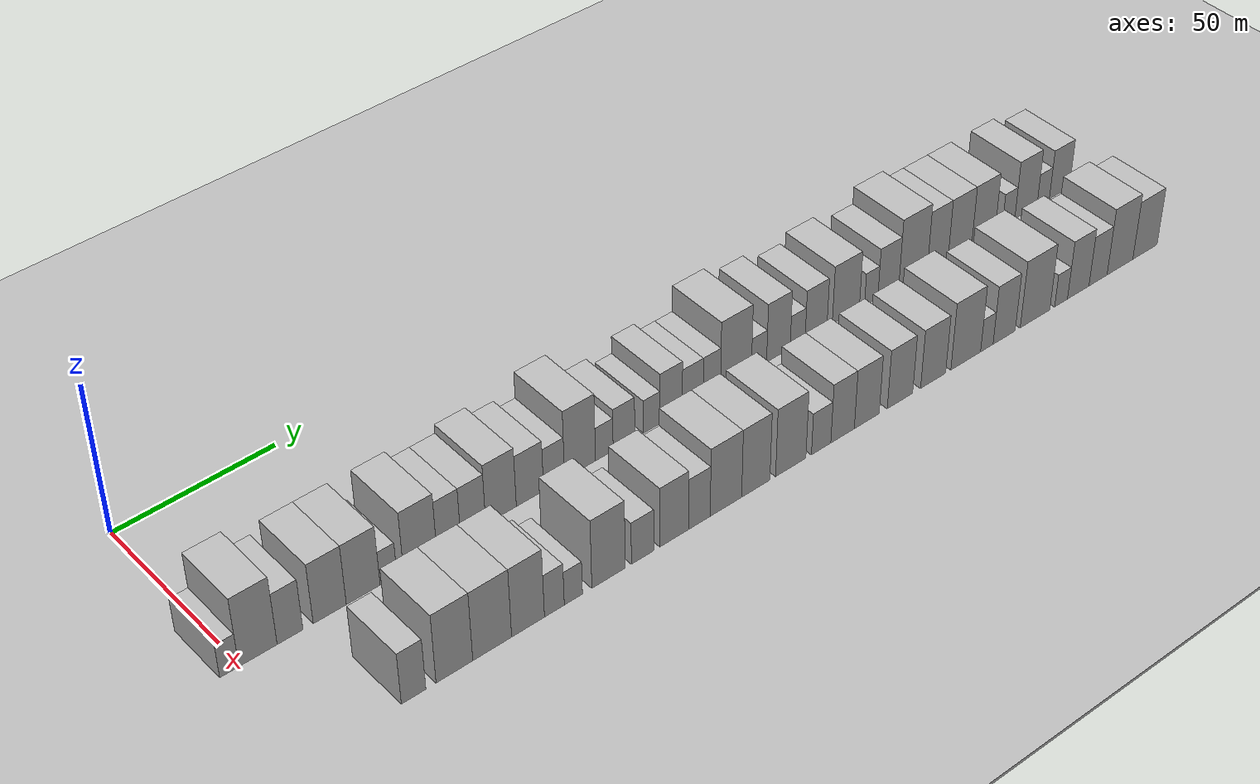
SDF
<sdf version="1.6">
 <world name="default">
  <include><name>ground_plane_1</name><uri>model://HANNAS_ground_plane</uri></include>
  <include>
   <name>ground_plane_2</name>
   <uri>model://HANNAS_ground_plane</uri>
   <pose>100 0 0  0 0 0</pose>
  </include>
  <model name="building_32">
   <static>1</static>
   <pose>50.0000 -3.4309 0 0.000000 0.000000 0.000000</pose>
   <link name="link">
    <pose>0 0 6.00 0 0 0</pose>
    <collision name="collision"><geometry><box><size>20.0000 5.4626 12.0000</size></box></geometry></collision>
    <visual name="visual">
     <cast_shadows>0</cast_shadows>
     <geometry><box><size>20.0000 5.4626 12.0000</size></box></geometry>
     <material>
      <script>
       <uri>model://HANNAS_wall/materials/scripts</uri>
       <uri>model://HANNAS_wall/materials/textures</uri>
       <name>vrc/HANNAS_wall</name>
      </script>
     </material>
    </visual>
   </link>
  </model>
  <model name="building_33">
   <static>1</static>
   <pose>50.0000 4.8221 0 0.000000 0.000000 0.000000</pose>
   <link name="link">
    <pose>0 0 12.00 0 0 0</pose>
    <collision name="collision"><geometry><box><size>20.0000 11.0434 24.0000</size></box></geometry></collision>
    <visual name="visual">
     <cast_shadows>0</cast_shadows>
     <geometry><box><size>20.0000 11.0434 24.0000</size></box></geometry>
     <material>
      <script>
       <uri>model://HANNAS_wall/materials/scripts</uri>
       <uri>model://HANNAS_wall/materials/textures</uri>
       <name>vrc/HANNAS_wall</name>
      </script>
     </material>
    </visual>
   </link>
  </model>
  <model name="building_34">
   <static>1</static>
   <pose>50.0000 14.1204 0 0.000000 0.000000 0.000000</pose>
   <link name="link">
    <pose>0 0 9.00 0 0 0</pose>
    <collision name="collision"><geometry><box><size>20.0000 7.5531 18.0000</size></box></geometry></collision>
    <visual name="visual">
     <cast_shadows>0</cast_shadows>
     <geometry><box><size>20.0000 7.5531 18.0000</size></box></geometry>
     <material>
      <script>
       <uri>model://HANNAS_wall/materials/scripts</uri>
       <uri>model://HANNAS_wall/materials/textures</uri>
       <name>vrc/HANNAS_wall</name>
      </script>
     </material>
    </visual>
   </link>
  </model>
  <model name="building_35">
   <static>1</static>
   <pose>50.0000 25.8246 0 0.000000 0.000000 0.000000</pose>
   <link name="link">
    <pose>0 0 10.50 0 0 0</pose>
    <collision name="collision"><geometry><box><size>20.0000 9.8552 21.0000</size></box></geometry></collision>
    <visual name="visual">
     <cast_shadows>0</cast_shadows>
     <geometry><box><size>20.0000 9.8552 21.0000</size></box></geometry>
     <material>
      <script>
       <uri>model://HANNAS_wall/materials/scripts</uri>
       <uri>model://HANNAS_wall/materials/textures</uri>
       <name>vrc/HANNAS_wall</name>
      </script>
     </material>
    </visual>
   </link>
  </model>
  <model name="building_36">
   <static>1</static>
   <pose>50.0000 35.8675 0 0.000000 0.000000 0.000000</pose>
   <link name="link">
    <pose>0 0 10.50 0 0 0</pose>
    <collision name="collision"><geometry><box><size>20.0000 10.2308 21.0000</size></box></geometry></collision>
    <visual name="visual">
     <cast_shadows>0</cast_shadows>
     <geometry><box><size>20.0000 10.2308 21.0000</size></box></geometry>
     <material>
      <script>
       <uri>model://HANNAS_wall/materials/scripts</uri>
       <uri>model://HANNAS_wall/materials/textures</uri>
       <name>vrc/HANNAS_wall</name>
      </script>
     </material>
    </visual>
   </link>
  </model>
  <model name="building_37">
   <static>1</static>
   <pose>50.0000 43.5499 0 0.000000 0.000000 0.000000</pose>
   <link name="link">
    <pose>0 0 6.00 0 0 0</pose>
    <collision name="collision"><geometry><box><size>20.0000 5.1339 12.0000</size></box></geometry></collision>
    <visual name="visual">
     <cast_shadows>0</cast_shadows>
     <geometry><box><size>20.0000 5.1339 12.0000</size></box></geometry>
     <material>
      <script>
       <uri>model://HANNAS_wall/materials/scripts</uri>
       <uri>model://HANNAS_wall/materials/textures</uri>
       <name>vrc/HANNAS_wall</name>
      </script>
     </material>
    </visual>
   </link>
  </model>
  <model name="building_38">
   <static>1</static>
   <pose>50.0000 53.2975 0 0.000000 0.000000 0.000000</pose>
   <link name="link">
    <pose>0 0 10.50 0 0 0</pose>
    <collision name="collision"><geometry><box><size>20.0000 10.3613 21.0000</size></box></geometry></collision>
    <visual name="visual">
     <cast_shadows>0</cast_shadows>
     <geometry><box><size>20.0000 10.3613 21.0000</size></box></geometry>
     <material>
      <script>
       <uri>model://HANNAS_wall/materials/scripts</uri>
       <uri>model://HANNAS_wall/materials/textures</uri>
       <name>vrc/HANNAS_wall</name>
      </script>
     </material>
    </visual>
   </link>
  </model>
  <model name="building_39">
   <static>1</static>
   <pose>50.0000 62.2341 0 0.000000 0.000000 0.000000</pose>
   <link name="link">
    <pose>0 0 9.00 0 0 0</pose>
    <collision name="collision"><geometry><box><size>20.0000 7.5119 18.0000</size></box></geometry></collision>
    <visual name="visual">
     <cast_shadows>0</cast_shadows>
     <geometry><box><size>20.0000 7.5119 18.0000</size></box></geometry>
     <material>
      <script>
       <uri>model://HANNAS_wall/materials/scripts</uri>
       <uri>model://HANNAS_wall/materials/textures</uri>
       <name>vrc/HANNAS_wall</name>
      </script>
     </material>
    </visual>
   </link>
  </model>
  <model name="building_40">
   <static>1</static>
   <pose>50.0000 69.9717 0 0.000000 0.000000 0.000000</pose>
   <link name="link">
    <pose>0 0 9.00 0 0 0</pose>
    <collision name="collision"><geometry><box><size>20.0000 7.9632 18.0000</size></box></geometry></collision>
    <visual name="visual">
     <cast_shadows>0</cast_shadows>
     <geometry><box><size>20.0000 7.9632 18.0000</size></box></geometry>
     <material>
      <script>
       <uri>model://HANNAS_wall/materials/scripts</uri>
       <uri>model://HANNAS_wall/materials/textures</uri>
       <name>vrc/HANNAS_wall</name>
      </script>
     </material>
    </visual>
   </link>
  </model>
  <model name="building_41">
   <static>1</static>
   <pose>50.0000 78.8873 0 0.000000 0.000000 0.000000</pose>
   <link name="link">
    <pose>0 0 10.50 0 0 0</pose>
    <collision name="collision"><geometry><box><size>20.0000 9.8679 21.0000</size></box></geometry></collision>
    <visual name="visual">
     <cast_shadows>0</cast_shadows>
     <geometry><box><size>20.0000 9.8679 21.0000</size></box></geometry>
     <material>
      <script>
       <uri>model://HANNAS_wall/materials/scripts</uri>
       <uri>model://HANNAS_wall/materials/textures</uri>
       <name>vrc/HANNAS_wall</name>
      </script>
     </material>
    </visual>
   </link>
  </model>
  <model name="building_42">
   <static>1</static>
   <pose>50.0000 88.2844 0 0.000000 0.000000 0.000000</pose>
   <link name="link">
    <pose>0 0 9.00 0 0 0</pose>
    <collision name="collision"><geometry><box><size>20.0000 8.9264 18.0000</size></box></geometry></collision>
    <visual name="visual">
     <cast_shadows>0</cast_shadows>
     <geometry><box><size>20.0000 8.9264 18.0000</size></box></geometry>
     <material>
      <script>
       <uri>model://HANNAS_wall/materials/scripts</uri>
       <uri>model://HANNAS_wall/materials/textures</uri>
       <name>vrc/HANNAS_wall</name>
      </script>
     </material>
    </visual>
   </link>
  </model>
  <model name="building_43">
   <static>1</static>
   <pose>50.0000 96.2258 0 0.000000 0.000000 0.000000</pose>
   <link name="link">
    <pose>0 0 7.50 0 0 0</pose>
    <collision name="collision"><geometry><box><size>20.0000 6.9563 15.0000</size></box></geometry></collision>
    <visual name="visual">
     <cast_shadows>0</cast_shadows>
     <geometry><box><size>20.0000 6.9563 15.0000</size></box></geometry>
     <material>
      <script>
       <uri>model://HANNAS_wall/materials/scripts</uri>
       <uri>model://HANNAS_wall/materials/textures</uri>
       <name>vrc/HANNAS_wall</name>
      </script>
     </material>
    </visual>
   </link>
  </model>
  <model name="building_44">
   <static>1</static>
   <pose>50.0000 104.8939 0 0.000000 0.000000 0.000000</pose>
   <link name="link">
    <pose>0 0 12.00 0 0 0</pose>
    <collision name="collision"><geometry><box><size>20.0000 10.3800 24.0000</size></box></geometry></collision>
    <visual name="visual">
     <cast_shadows>0</cast_shadows>
     <geometry><box><size>20.0000 10.3800 24.0000</size></box></geometry>
     <material>
      <script>
       <uri>model://HANNAS_wall/materials/scripts</uri>
       <uri>model://HANNAS_wall/materials/textures</uri>
       <name>vrc/HANNAS_wall</name>
      </script>
     </material>
    </visual>
   </link>
  </model>
  <model name="building_45">
   <static>1</static>
   <pose>50.0000 113.0699 0 0.000000 0.000000 0.000000</pose>
   <link name="link">
    <pose>0 0 6.00 0 0 0</pose>
    <collision name="collision"><geometry><box><size>20.0000 5.9718 12.0000</size></box></geometry></collision>
    <visual name="visual">
     <cast_shadows>0</cast_shadows>
     <geometry><box><size>20.0000 5.9718 12.0000</size></box></geometry>
     <material>
      <script>
       <uri>model://HANNAS_wall/materials/scripts</uri>
       <uri>model://HANNAS_wall/materials/textures</uri>
       <name>vrc/HANNAS_wall</name>
      </script>
     </material>
    </visual>
   </link>
  </model>
  <model name="building_46">
   <static>1</static>
   <pose>50.0000 119.7701 0 0.000000 0.000000 0.000000</pose>
   <link name="link">
    <pose>0 0 7.50 0 0 0</pose>
    <collision name="collision"><geometry><box><size>20.0000 7.4286 15.0000</size></box></geometry></collision>
    <visual name="visual">
     <cast_shadows>0</cast_shadows>
     <geometry><box><size>20.0000 7.4286 15.0000</size></box></geometry>
     <material>
      <script>
       <uri>model://HANNAS_wall/materials/scripts</uri>
       <uri>model://HANNAS_wall/materials/textures</uri>
       <name>vrc/HANNAS_wall</name>
      </script>
     </material>
    </visual>
   </link>
  </model>
  <model name="building_47">
   <static>1</static>
   <pose>50.0000 129.3708 0 0.000000 0.000000 0.000000</pose>
   <link name="link">
    <pose>0 0 6.00 0 0 0</pose>
    <collision name="collision"><geometry><box><size>20.0000 5.7727 12.0000</size></box></geometry></collision>
    <visual name="visual">
     <cast_shadows>0</cast_shadows>
     <geometry><box><size>20.0000 5.7727 12.0000</size></box></geometry>
     <material>
      <script>
       <uri>model://HANNAS_wall/materials/scripts</uri>
       <uri>model://HANNAS_wall/materials/textures</uri>
       <name>vrc/HANNAS_wall</name>
      </script>
     </material>
    </visual>
   </link>
  </model>
  <model name="building_48">
   <static>1</static>
   <pose>50.0000 136.1552 0 0.000000 0.000000 0.000000</pose>
   <link name="link">
    <pose>0 0 9.00 0 0 0</pose>
    <collision name="collision"><geometry><box><size>20.0000 7.7961 18.0000</size></box></geometry></collision>
    <visual name="visual">
     <cast_shadows>0</cast_shadows>
     <geometry><box><size>20.0000 7.7961 18.0000</size></box></geometry>
     <material>
      <script>
       <uri>model://HANNAS_wall/materials/scripts</uri>
       <uri>model://HANNAS_wall/materials/textures</uri>
       <name>vrc/HANNAS_wall</name>
      </script>
     </material>
    </visual>
   </link>
  </model>
  <model name="building_49">
   <static>1</static>
   <pose>50.0000 143.7373 0 0.000000 0.000000 0.000000</pose>
   <link name="link">
    <pose>0 0 7.50 0 0 0</pose>
    <collision name="collision"><geometry><box><size>20.0000 7.3680 15.0000</size></box></geometry></collision>
    <visual name="visual">
     <cast_shadows>0</cast_shadows>
     <geometry><box><size>20.0000 7.3680 15.0000</size></box></geometry>
     <material>
      <script>
       <uri>model://HANNAS_wall/materials/scripts</uri>
       <uri>model://HANNAS_wall/materials/textures</uri>
       <name>vrc/HANNAS_wall</name>
      </script>
     </material>
    </visual>
   </link>
  </model>
  <model name="building_50">
   <static>1</static>
   <pose>50.0000 150.5188 0 0.000000 0.000000 0.000000</pose>
   <link name="link">
    <pose>0 0 7.50 0 0 0</pose>
    <collision name="collision"><geometry><box><size>20.0000 6.1952 15.0000</size></box></geometry></collision>
    <visual name="visual">
     <cast_shadows>0</cast_shadows>
     <geometry><box><size>20.0000 6.1952 15.0000</size></box></geometry>
     <material>
      <script>
       <uri>model://HANNAS_wall/materials/scripts</uri>
       <uri>model://HANNAS_wall/materials/textures</uri>
       <name>vrc/HANNAS_wall</name>
      </script>
     </material>
    </visual>
   </link>
  </model>
  <model name="building_51">
   <static>1</static>
   <pose>50.0000 159.2258 0 0.000000 0.000000 0.000000</pose>
   <link name="link">
    <pose>0 0 12.00 0 0 0</pose>
    <collision name="collision"><geometry><box><size>20.0000 11.2186 24.0000</size></box></geometry></collision>
    <visual name="visual">
     <cast_shadows>0</cast_shadows>
     <geometry><box><size>20.0000 11.2186 24.0000</size></box></geometry>
     <material>
      <script>
       <uri>model://HANNAS_wall/materials/scripts</uri>
       <uri>model://HANNAS_wall/materials/textures</uri>
       <name>vrc/HANNAS_wall</name>
      </script>
     </material>
    </visual>
   </link>
  </model>
  <model name="building_52">
   <static>1</static>
   <pose>50.0000 167.6188 0 0.000000 0.000000 0.000000</pose>
   <link name="link">
    <pose>0 0 6.00 0 0 0</pose>
    <collision name="collision"><geometry><box><size>20.0000 5.5675 12.0000</size></box></geometry></collision>
    <visual name="visual">
     <cast_shadows>0</cast_shadows>
     <geometry><box><size>20.0000 5.5675 12.0000</size></box></geometry>
     <material>
      <script>
       <uri>model://HANNAS_wall/materials/scripts</uri>
       <uri>model://HANNAS_wall/materials/textures</uri>
       <name>vrc/HANNAS_wall</name>
      </script>
     </material>
    </visual>
   </link>
  </model>
  <model name="building_53">
   <static>1</static>
   <pose>50.0000 174.7713 0 0.000000 0.000000 0.000000</pose>
   <link name="link">
    <pose>0 0 10.50 0 0 0</pose>
    <collision name="collision"><geometry><box><size>20.0000 8.7375 21.0000</size></box></geometry></collision>
    <visual name="visual">
     <cast_shadows>0</cast_shadows>
     <geometry><box><size>20.0000 8.7375 21.0000</size></box></geometry>
     <material>
      <script>
       <uri>model://HANNAS_wall/materials/scripts</uri>
       <uri>model://HANNAS_wall/materials/textures</uri>
       <name>vrc/HANNAS_wall</name>
      </script>
     </material>
    </visual>
   </link>
  </model>
  <model name="building_54">
   <static>1</static>
   <pose>50.0000 181.9391 0 0.000000 0.000000 0.000000</pose>
   <link name="link">
    <pose>0 0 6.00 0 0 0</pose>
    <collision name="collision"><geometry><box><size>20.0000 5.5981 12.0000</size></box></geometry></collision>
    <visual name="visual">
     <cast_shadows>0</cast_shadows>
     <geometry><box><size>20.0000 5.5981 12.0000</size></box></geometry>
     <material>
      <script>
       <uri>model://HANNAS_wall/materials/scripts</uri>
       <uri>model://HANNAS_wall/materials/textures</uri>
       <name>vrc/HANNAS_wall</name>
      </script>
     </material>
    </visual>
   </link>
  </model>
  <model name="building_55">
   <static>1</static>
   <pose>50.0000 188.8689 0 0.000000 0.000000 0.000000</pose>
   <link name="link">
    <pose>0 0 9.00 0 0 0</pose>
    <collision name="collision"><geometry><box><size>20.0000 8.2615 18.0000</size></box></geometry></collision>
    <visual name="visual">
     <cast_shadows>0</cast_shadows>
     <geometry><box><size>20.0000 8.2615 18.0000</size></box></geometry>
     <material>
      <script>
       <uri>model://HANNAS_wall/materials/scripts</uri>
       <uri>model://HANNAS_wall/materials/textures</uri>
       <name>vrc/HANNAS_wall</name>
      </script>
     </material>
    </visual>
   </link>
  </model>
  <model name="building_56">
   <static>1</static>
   <pose>50.0000 200.1994 0 0.000000 0.000000 0.000000</pose>
   <link name="link">
    <pose>0 0 10.50 0 0 0</pose>
    <collision name="collision"><geometry><box><size>20.0000 10.3995 21.0000</size></box></geometry></collision>
    <visual name="visual">
     <cast_shadows>0</cast_shadows>
     <geometry><box><size>20.0000 10.3995 21.0000</size></box></geometry>
     <material>
      <script>
       <uri>model://HANNAS_wall/materials/scripts</uri>
       <uri>model://HANNAS_wall/materials/textures</uri>
       <name>vrc/HANNAS_wall</name>
      </script>
     </material>
    </visual>
   </link>
  </model>
  <model name="building_57">
   <static>1</static>
   <pose>50.0000 210.0038 0 0.000000 0.000000 0.000000</pose>
   <link name="link">
    <pose>0 0 6.00 0 0 0</pose>
    <collision name="collision"><geometry><box><size>20.0000 5.2093 12.0000</size></box></geometry></collision>
    <visual name="visual">
     <cast_shadows>0</cast_shadows>
     <geometry><box><size>20.0000 5.2093 12.0000</size></box></geometry>
     <material>
      <script>
       <uri>model://HANNAS_wall/materials/scripts</uri>
       <uri>model://HANNAS_wall/materials/textures</uri>
       <name>vrc/HANNAS_wall</name>
      </script>
     </material>
    </visual>
   </link>
  </model>
  <model name="building_58">
   <static>1</static>
   <pose>50.0000 216.7293 0 0.000000 0.000000 0.000000</pose>
   <link name="link">
    <pose>0 0 9.00 0 0 0</pose>
    <collision name="collision"><geometry><box><size>20.0000 8.2417 18.0000</size></box></geometry></collision>
    <visual name="visual">
     <cast_shadows>0</cast_shadows>
     <geometry><box><size>20.0000 8.2417 18.0000</size></box></geometry>
     <material>
      <script>
       <uri>model://HANNAS_wall/materials/scripts</uri>
       <uri>model://HANNAS_wall/materials/textures</uri>
       <name>vrc/HANNAS_wall</name>
      </script>
     </material>
    </visual>
   </link>
  </model>
  <model name="building_59">
   <static>1</static>
   <pose>50.0000 226.5203 0 0.000000 0.000000 0.000000</pose>
   <link name="link">
    <pose>0 0 12.00 0 0 0</pose>
    <collision name="collision"><geometry><box><size>20.0000 11.3402 24.0000</size></box></geometry></collision>
    <visual name="visual">
     <cast_shadows>0</cast_shadows>
     <geometry><box><size>20.0000 11.3402 24.0000</size></box></geometry>
     <material>
      <script>
       <uri>model://HANNAS_wall/materials/scripts</uri>
       <uri>model://HANNAS_wall/materials/textures</uri>
       <name>vrc/HANNAS_wall</name>
      </script>
     </material>
    </visual>
   </link>
  </model>
  <model name="building_60">
   <static>1</static>
   <pose>50.0000 236.3976 0 0.000000 0.000000 0.000000</pose>
   <link name="link">
    <pose>0 0 10.50 0 0 0</pose>
    <collision name="collision"><geometry><box><size>20.0000 8.4144 21.0000</size></box></geometry></collision>
    <visual name="visual">
     <cast_shadows>0</cast_shadows>
     <geometry><box><size>20.0000 8.4144 21.0000</size></box></geometry>
     <material>
      <script>
       <uri>model://HANNAS_wall/materials/scripts</uri>
       <uri>model://HANNAS_wall/materials/textures</uri>
       <name>vrc/HANNAS_wall</name>
      </script>
     </material>
    </visual>
   </link>
  </model>
  <model name="building_61">
   <static>1</static>
   <pose>50.0000 245.4317 0 0.000000 0.000000 0.000000</pose>
   <link name="link">
    <pose>0 0 10.50 0 0 0</pose>
    <collision name="collision"><geometry><box><size>20.0000 9.6538 21.0000</size></box></geometry></collision>
    <visual name="visual">
     <cast_shadows>0</cast_shadows>
     <geometry><box><size>20.0000 9.6538 21.0000</size></box></geometry>
     <material>
      <script>
       <uri>model://HANNAS_wall/materials/scripts</uri>
       <uri>model://HANNAS_wall/materials/textures</uri>
       <name>vrc/HANNAS_wall</name>
      </script>
     </material>
    </visual>
   </link>
  </model>
  <model name="building_62">
   <static>1</static>
   <pose>50.0000 255.0809 0 0.000000 0.000000 0.000000</pose>
   <link name="link">
    <pose>0 0 10.50 0 0 0</pose>
    <collision name="collision"><geometry><box><size>20.0000 9.6447 21.0000</size></box></geometry></collision>
    <visual name="visual">
     <cast_shadows>0</cast_shadows>
     <geometry><box><size>20.0000 9.6447 21.0000</size></box></geometry>
     <material>
      <script>
       <uri>model://HANNAS_wall/materials/scripts</uri>
       <uri>model://HANNAS_wall/materials/textures</uri>
       <name>vrc/HANNAS_wall</name>
      </script>
     </material>
    </visual>
   </link>
  </model>
  <model name="building_63">
   <static>1</static>
   <pose>50.0000 265.5002 0 0.000000 0.000000 0.000000</pose>
   <link name="link">
    <pose>0 0 6.00 0 0 0</pose>
    <collision name="collision"><geometry><box><size>20.0000 5.1939 12.0000</size></box></geometry></collision>
    <visual name="visual">
     <cast_shadows>0</cast_shadows>
     <geometry><box><size>20.0000 5.1939 12.0000</size></box></geometry>
     <material>
      <script>
       <uri>model://HANNAS_wall/materials/scripts</uri>
       <uri>model://HANNAS_wall/materials/textures</uri>
       <name>vrc/HANNAS_wall</name>
      </script>
     </material>
    </visual>
   </link>
  </model>
  <model name="building_64">
   <static>1</static>
   <pose>50.0000 272.7870 0 0.000000 0.000000 0.000000</pose>
   <link name="link">
    <pose>0 0 10.50 0 0 0</pose>
    <collision name="collision"><geometry><box><size>20.0000 9.3796 21.0000</size></box></geometry></collision>
    <visual name="visual">
     <cast_shadows>0</cast_shadows>
     <geometry><box><size>20.0000 9.3796 21.0000</size></box></geometry>
     <material>
      <script>
       <uri>model://HANNAS_wall/materials/scripts</uri>
       <uri>model://HANNAS_wall/materials/textures</uri>
       <name>vrc/HANNAS_wall</name>
      </script>
     </material>
    </visual>
   </link>
  </model>
  <model name="building_65">
   <static>1</static>
   <pose>50.0000 280.1241 0 0.000000 0.000000 0.000000</pose>
   <link name="link">
    <pose>0 0 6.00 0 0 0</pose>
    <collision name="collision"><geometry><box><size>20.0000 5.2946 12.0000</size></box></geometry></collision>
    <visual name="visual">
     <cast_shadows>0</cast_shadows>
     <geometry><box><size>20.0000 5.2946 12.0000</size></box></geometry>
     <material>
      <script>
       <uri>model://HANNAS_wall/materials/scripts</uri>
       <uri>model://HANNAS_wall/materials/textures</uri>
       <name>vrc/HANNAS_wall</name>
      </script>
     </material>
    </visual>
   </link>
  </model>
  <model name="building_66">
   <static>1</static>
   <pose>50.0000 287.0903 0 0.000000 0.000000 0.000000</pose>
   <link name="link">
    <pose>0 0 9.00 0 0 0</pose>
    <collision name="collision"><geometry><box><size>20.0000 8.6378 18.0000</size></box></geometry></collision>
    <visual name="visual">
     <cast_shadows>0</cast_shadows>
     <geometry><box><size>20.0000 8.6378 18.0000</size></box></geometry>
     <material>
      <script>
       <uri>model://HANNAS_wall/materials/scripts</uri>
       <uri>model://HANNAS_wall/materials/textures</uri>
       <name>vrc/HANNAS_wall</name>
      </script>
     </material>
    </visual>
   </link>
  </model>
  <model name="building_98">
   <static>1</static>
   <pose>85.0000 25.6211 0 0.000000 0.000000 0.000000</pose>
   <link name="link">
    <pose>0 0 9.00 0 0 0</pose>
    <collision name="collision"><geometry><box><size>20.0000 7.2183 18.0000</size></box></geometry></collision>
    <visual name="visual">
     <cast_shadows>0</cast_shadows>
     <geometry><box><size>20.0000 7.2183 18.0000</size></box></geometry>
     <material>
      <script>
       <uri>model://HANNAS_wall/materials/scripts</uri>
       <uri>model://HANNAS_wall/materials/textures</uri>
       <name>vrc/HANNAS_wall</name>
      </script>
     </material>
    </visual>
   </link>
  </model>
  <model name="building_99">
   <static>1</static>
   <pose>85.0000 37.7365 0 0.000000 0.000000 0.000000</pose>
   <link name="link">
    <pose>0 0 12.00 0 0 0</pose>
    <collision name="collision"><geometry><box><size>20.0000 11.0126 24.0000</size></box></geometry></collision>
    <visual name="visual">
     <cast_shadows>0</cast_shadows>
     <geometry><box><size>20.0000 11.0126 24.0000</size></box></geometry>
     <material>
      <script>
       <uri>model://HANNAS_wall/materials/scripts</uri>
       <uri>model://HANNAS_wall/materials/textures</uri>
       <name>vrc/HANNAS_wall</name>
      </script>
     </material>
    </visual>
   </link>
  </model>
  <model name="building_100">
   <static>1</static>
   <pose>85.0000 49.1598 0 0.000000 0.000000 0.000000</pose>
   <link name="link">
    <pose>0 0 12.00 0 0 0</pose>
    <collision name="collision"><geometry><box><size>20.0000 11.8340 24.0000</size></box></geometry></collision>
    <visual name="visual">
     <cast_shadows>0</cast_shadows>
     <geometry><box><size>20.0000 11.8340 24.0000</size></box></geometry>
     <material>
      <script>
       <uri>model://HANNAS_wall/materials/scripts</uri>
       <uri>model://HANNAS_wall/materials/textures</uri>
       <name>vrc/HANNAS_wall</name>
      </script>
     </material>
    </visual>
   </link>
  </model>
  <model name="building_101">
   <static>1</static>
   <pose>85.0000 60.1749 0 0.000000 0.000000 0.000000</pose>
   <link name="link">
    <pose>0 0 12.00 0 0 0</pose>
    <collision name="collision"><geometry><box><size>20.0000 10.1961 24.0000</size></box></geometry></collision>
    <visual name="visual">
     <cast_shadows>0</cast_shadows>
     <geometry><box><size>20.0000 10.1961 24.0000</size></box></geometry>
     <material>
      <script>
       <uri>model://HANNAS_wall/materials/scripts</uri>
       <uri>model://HANNAS_wall/materials/textures</uri>
       <name>vrc/HANNAS_wall</name>
      </script>
     </material>
    </visual>
   </link>
  </model>
  <model name="building_102">
   <static>1</static>
   <pose>85.0000 68.3867 0 0.000000 0.000000 0.000000</pose>
   <link name="link">
    <pose>0 0 7.50 0 0 0</pose>
    <collision name="collision"><geometry><box><size>20.0000 6.2275 15.0000</size></box></geometry></collision>
    <visual name="visual">
     <cast_shadows>0</cast_shadows>
     <geometry><box><size>20.0000 6.2275 15.0000</size></box></geometry>
     <material>
      <script>
       <uri>model://HANNAS_wall/materials/scripts</uri>
       <uri>model://HANNAS_wall/materials/textures</uri>
       <name>vrc/HANNAS_wall</name>
      </script>
     </material>
    </visual>
   </link>
  </model>
  <model name="building_103">
   <static>1</static>
   <pose>85.0000 74.3797 0 0.000000 0.000000 0.000000</pose>
   <link name="link">
    <pose>0 0 6.00 0 0 0</pose>
    <collision name="collision"><geometry><box><size>20.0000 5.7584 12.0000</size></box></geometry></collision>
    <visual name="visual">
     <cast_shadows>0</cast_shadows>
     <geometry><box><size>20.0000 5.7584 12.0000</size></box></geometry>
     <material>
      <script>
       <uri>model://HANNAS_wall/materials/scripts</uri>
       <uri>model://HANNAS_wall/materials/textures</uri>
       <name>vrc/HANNAS_wall</name>
      </script>
     </material>
    </visual>
   </link>
  </model>
  <model name="building_104">
   <static>1</static>
   <pose>85.0000 85.6595 0 0.000000 0.000000 0.000000</pose>
   <link name="link">
    <pose>0 0 12.00 0 0 0</pose>
    <collision name="collision"><geometry><box><size>20.0000 10.8012 24.0000</size></box></geometry></collision>
    <visual name="visual">
     <cast_shadows>0</cast_shadows>
     <geometry><box><size>20.0000 10.8012 24.0000</size></box></geometry>
     <material>
      <script>
       <uri>model://HANNAS_wall/materials/scripts</uri>
       <uri>model://HANNAS_wall/materials/textures</uri>
       <name>vrc/HANNAS_wall</name>
      </script>
     </material>
    </visual>
   </link>
  </model>
  <model name="building_105">
   <static>1</static>
   <pose>85.0000 96.7457 0 0.000000 0.000000 0.000000</pose>
   <link name="link">
    <pose>0 0 7.50 0 0 0</pose>
    <collision name="collision"><geometry><box><size>20.0000 7.3713 15.0000</size></box></geometry></collision>
    <visual name="visual">
     <cast_shadows>0</cast_shadows>
     <geometry><box><size>20.0000 7.3713 15.0000</size></box></geometry>
     <material>
      <script>
       <uri>model://HANNAS_wall/materials/scripts</uri>
       <uri>model://HANNAS_wall/materials/textures</uri>
       <name>vrc/HANNAS_wall</name>
      </script>
     </material>
    </visual>
   </link>
  </model>
  <model name="building_106">
   <static>1</static>
   <pose>85.0000 107.2234 0 0.000000 0.000000 0.000000</pose>
   <link name="link">
    <pose>0 0 10.50 0 0 0</pose>
    <collision name="collision"><geometry><box><size>20.0000 9.5841 21.0000</size></box></geometry></collision>
    <visual name="visual">
     <cast_shadows>0</cast_shadows>
     <geometry><box><size>20.0000 9.5841 21.0000</size></box></geometry>
     <material>
      <script>
       <uri>model://HANNAS_wall/materials/scripts</uri>
       <uri>model://HANNAS_wall/materials/textures</uri>
       <name>vrc/HANNAS_wall</name>
      </script>
     </material>
    </visual>
   </link>
  </model>
  <model name="building_107">
   <static>1</static>
   <pose>85.0000 115.6477 0 0.000000 0.000000 0.000000</pose>
   <link name="link">
    <pose>0 0 9.00 0 0 0</pose>
    <collision name="collision"><geometry><box><size>20.0000 7.2645 18.0000</size></box></geometry></collision>
    <visual name="visual">
     <cast_shadows>0</cast_shadows>
     <geometry><box><size>20.0000 7.2645 18.0000</size></box></geometry>
     <material>
      <script>
       <uri>model://HANNAS_wall/materials/scripts</uri>
       <uri>model://HANNAS_wall/materials/textures</uri>
       <name>vrc/HANNAS_wall</name>
      </script>
     </material>
    </visual>
   </link>
  </model>
  <model name="building_108">
   <static>1</static>
   <pose>85.0000 124.6630 0 0.000000 0.000000 0.000000</pose>
   <link name="link">
    <pose>0 0 12.00 0 0 0</pose>
    <collision name="collision"><geometry><box><size>20.0000 10.7661 24.0000</size></box></geometry></collision>
    <visual name="visual">
     <cast_shadows>0</cast_shadows>
     <geometry><box><size>20.0000 10.7661 24.0000</size></box></geometry>
     <material>
      <script>
       <uri>model://HANNAS_wall/materials/scripts</uri>
       <uri>model://HANNAS_wall/materials/textures</uri>
       <name>vrc/HANNAS_wall</name>
      </script>
     </material>
    </visual>
   </link>
  </model>
  <model name="building_109">
   <static>1</static>
   <pose>85.0000 134.9512 0 0.000000 0.000000 0.000000</pose>
   <link name="link">
    <pose>0 0 12.00 0 0 0</pose>
    <collision name="collision"><geometry><box><size>20.0000 9.8102 24.0000</size></box></geometry></collision>
    <visual name="visual">
     <cast_shadows>0</cast_shadows>
     <geometry><box><size>20.0000 9.8102 24.0000</size></box></geometry>
     <material>
      <script>
       <uri>model://HANNAS_wall/materials/scripts</uri>
       <uri>model://HANNAS_wall/materials/textures</uri>
       <name>vrc/HANNAS_wall</name>
      </script>
     </material>
    </visual>
   </link>
  </model>
  <model name="building_110">
   <static>1</static>
   <pose>85.0000 147.2173 0 0.000000 0.000000 0.000000</pose>
   <link name="link">
    <pose>0 0 12.00 0 0 0</pose>
    <collision name="collision"><geometry><box><size>20.0000 10.7220 24.0000</size></box></geometry></collision>
    <visual name="visual">
     <cast_shadows>0</cast_shadows>
     <geometry><box><size>20.0000 10.7220 24.0000</size></box></geometry>
     <material>
      <script>
       <uri>model://HANNAS_wall/materials/scripts</uri>
       <uri>model://HANNAS_wall/materials/textures</uri>
       <name>vrc/HANNAS_wall</name>
      </script>
     </material>
    </visual>
   </link>
  </model>
  <model name="building_111">
   <static>1</static>
   <pose>85.0000 158.0603 0 0.000000 0.000000 0.000000</pose>
   <link name="link">
    <pose>0 0 7.50 0 0 0</pose>
    <collision name="collision"><geometry><box><size>20.0000 6.9640 15.0000</size></box></geometry></collision>
    <visual name="visual">
     <cast_shadows>0</cast_shadows>
     <geometry><box><size>20.0000 6.9640 15.0000</size></box></geometry>
     <material>
      <script>
       <uri>model://HANNAS_wall/materials/scripts</uri>
       <uri>model://HANNAS_wall/materials/textures</uri>
       <name>vrc/HANNAS_wall</name>
      </script>
     </material>
    </visual>
   </link>
  </model>
  <model name="building_112">
   <static>1</static>
   <pose>85.0000 165.8178 0 0.000000 0.000000 0.000000</pose>
   <link name="link">
    <pose>0 0 10.50 0 0 0</pose>
    <collision name="collision"><geometry><box><size>20.0000 8.5511 21.0000</size></box></geometry></collision>
    <visual name="visual">
     <cast_shadows>0</cast_shadows>
     <geometry><box><size>20.0000 8.5511 21.0000</size></box></geometry>
     <material>
      <script>
       <uri>model://HANNAS_wall/materials/scripts</uri>
       <uri>model://HANNAS_wall/materials/textures</uri>
       <name>vrc/HANNAS_wall</name>
      </script>
     </material>
    </visual>
   </link>
  </model>
  <model name="building_113">
   <static>1</static>
   <pose>85.0000 174.6795 0 0.000000 0.000000 0.000000</pose>
   <link name="link">
    <pose>0 0 10.50 0 0 0</pose>
    <collision name="collision"><geometry><box><size>20.0000 9.1722 21.0000</size></box></geometry></collision>
    <visual name="visual">
     <cast_shadows>0</cast_shadows>
     <geometry><box><size>20.0000 9.1722 21.0000</size></box></geometry>
     <material>
      <script>
       <uri>model://HANNAS_wall/materials/scripts</uri>
       <uri>model://HANNAS_wall/materials/textures</uri>
       <name>vrc/HANNAS_wall</name>
      </script>
     </material>
    </visual>
   </link>
  </model>
  <model name="building_114">
   <static>1</static>
   <pose>85.0000 187.0227 0 0.000000 0.000000 0.000000</pose>
   <link name="link">
    <pose>0 0 10.50 0 0 0</pose>
    <collision name="collision"><geometry><box><size>20.0000 9.5142 21.0000</size></box></geometry></collision>
    <visual name="visual">
     <cast_shadows>0</cast_shadows>
     <geometry><box><size>20.0000 9.5142 21.0000</size></box></geometry>
     <material>
      <script>
       <uri>model://HANNAS_wall/materials/scripts</uri>
       <uri>model://HANNAS_wall/materials/textures</uri>
       <name>vrc/HANNAS_wall</name>
      </script>
     </material>
    </visual>
   </link>
  </model>
  <model name="building_115">
   <static>1</static>
   <pose>85.0000 199.5603 0 0.000000 0.000000 0.000000</pose>
   <link name="link">
    <pose>0 0 10.50 0 0 0</pose>
    <collision name="collision"><geometry><box><size>20.0000 9.5610 21.0000</size></box></geometry></collision>
    <visual name="visual">
     <cast_shadows>0</cast_shadows>
     <geometry><box><size>20.0000 9.5610 21.0000</size></box></geometry>
     <material>
      <script>
       <uri>model://HANNAS_wall/materials/scripts</uri>
       <uri>model://HANNAS_wall/materials/textures</uri>
       <name>vrc/HANNAS_wall</name>
      </script>
     </material>
    </visual>
   </link>
  </model>
  <model name="building_116">
   <static>1</static>
   <pose>85.0000 212.1215 0 0.000000 0.000000 0.000000</pose>
   <link name="link">
    <pose>0 0 12.00 0 0 0</pose>
    <collision name="collision"><geometry><box><size>20.0000 11.5614 24.0000</size></box></geometry></collision>
    <visual name="visual">
     <cast_shadows>0</cast_shadows>
     <geometry><box><size>20.0000 11.5614 24.0000</size></box></geometry>
     <material>
      <script>
       <uri>model://HANNAS_wall/materials/scripts</uri>
       <uri>model://HANNAS_wall/materials/textures</uri>
       <name>vrc/HANNAS_wall</name>
      </script>
     </material>
    </visual>
   </link>
  </model>
  <model name="building_117">
   <static>1</static>
   <pose>85.0000 220.3493 0 0.000000 0.000000 0.000000</pose>
   <link name="link">
    <pose>0 0 6.00 0 0 0</pose>
    <collision name="collision"><geometry><box><size>20.0000 4.8942 12.0000</size></box></geometry></collision>
    <visual name="visual">
     <cast_shadows>0</cast_shadows>
     <geometry><box><size>20.0000 4.8942 12.0000</size></box></geometry>
     <material>
      <script>
       <uri>model://HANNAS_wall/materials/scripts</uri>
       <uri>model://HANNAS_wall/materials/textures</uri>
       <name>vrc/HANNAS_wall</name>
      </script>
     </material>
    </visual>
   </link>
  </model>
  <model name="building_118">
   <static>1</static>
   <pose>85.0000 227.1881 0 0.000000 0.000000 0.000000</pose>
   <link name="link">
    <pose>0 0 10.50 0 0 0</pose>
    <collision name="collision"><geometry><box><size>20.0000 8.7834 21.0000</size></box></geometry></collision>
    <visual name="visual">
     <cast_shadows>0</cast_shadows>
     <geometry><box><size>20.0000 8.7834 21.0000</size></box></geometry>
     <material>
      <script>
       <uri>model://HANNAS_wall/materials/scripts</uri>
       <uri>model://HANNAS_wall/materials/textures</uri>
       <name>vrc/HANNAS_wall</name>
      </script>
     </material>
    </visual>
   </link>
  </model>
  <model name="building_119">
   <static>1</static>
   <pose>85.0000 239.5413 0 0.000000 0.000000 0.000000</pose>
   <link name="link">
    <pose>0 0 12.00 0 0 0</pose>
    <collision name="collision"><geometry><box><size>20.0000 11.9229 24.0000</size></box></geometry></collision>
    <visual name="visual">
     <cast_shadows>0</cast_shadows>
     <geometry><box><size>20.0000 11.9229 24.0000</size></box></geometry>
     <material>
      <script>
       <uri>model://HANNAS_wall/materials/scripts</uri>
       <uri>model://HANNAS_wall/materials/textures</uri>
       <name>vrc/HANNAS_wall</name>
      </script>
     </material>
    </visual>
   </link>
  </model>
  <model name="building_120">
   <static>1</static>
   <pose>85.0000 250.1255 0 0.000000 0.000000 0.000000</pose>
   <link name="link">
    <pose>0 0 6.00 0 0 0</pose>
    <collision name="collision"><geometry><box><size>20.0000 5.2453 12.0000</size></box></geometry></collision>
    <visual name="visual">
     <cast_shadows>0</cast_shadows>
     <geometry><box><size>20.0000 5.2453 12.0000</size></box></geometry>
     <material>
      <script>
       <uri>model://HANNAS_wall/materials/scripts</uri>
       <uri>model://HANNAS_wall/materials/textures</uri>
       <name>vrc/HANNAS_wall</name>
      </script>
     </material>
    </visual>
   </link>
  </model>
  <model name="building_121">
   <static>1</static>
   <pose>85.0000 257.2017 0 0.000000 0.000000 0.000000</pose>
   <link name="link">
    <pose>0 0 10.50 0 0 0</pose>
    <collision name="collision"><geometry><box><size>20.0000 8.9071 21.0000</size></box></geometry></collision>
    <visual name="visual">
     <cast_shadows>0</cast_shadows>
     <geometry><box><size>20.0000 8.9071 21.0000</size></box></geometry>
     <material>
      <script>
       <uri>model://HANNAS_wall/materials/scripts</uri>
       <uri>model://HANNAS_wall/materials/textures</uri>
       <name>vrc/HANNAS_wall</name>
      </script>
     </material>
    </visual>
   </link>
  </model>
  <model name="building_122">
   <static>1</static>
   <pose>85.0000 265.4273 0 0.000000 0.000000 0.000000</pose>
   <link name="link">
    <pose>0 0 9.00 0 0 0</pose>
    <collision name="collision"><geometry><box><size>20.0000 7.5441 18.0000</size></box></geometry></collision>
    <visual name="visual">
     <cast_shadows>0</cast_shadows>
     <geometry><box><size>20.0000 7.5441 18.0000</size></box></geometry>
     <material>
      <script>
       <uri>model://HANNAS_wall/materials/scripts</uri>
       <uri>model://HANNAS_wall/materials/textures</uri>
       <name>vrc/HANNAS_wall</name>
      </script>
     </material>
    </visual>
   </link>
  </model>
  <model name="building_123">
   <static>1</static>
   <pose>85.0000 274.6498 0 0.000000 0.000000 0.000000</pose>
   <link name="link">
    <pose>0 0 12.00 0 0 0</pose>
    <collision name="collision"><geometry><box><size>20.0000 10.9011 24.0000</size></box></geometry></collision>
    <visual name="visual">
     <cast_shadows>0</cast_shadows>
     <geometry><box><size>20.0000 10.9011 24.0000</size></box></geometry>
     <material>
      <script>
       <uri>model://HANNAS_wall/materials/scripts</uri>
       <uri>model://HANNAS_wall/materials/textures</uri>
       <name>vrc/HANNAS_wall</name>
      </script>
     </material>
    </visual>
   </link>
  </model>
  <model name="building_124">
   <static>1</static>
   <pose>85.0000 285.3083 0 0.000000 0.000000 0.000000</pose>
   <link name="link">
    <pose>0 0 10.50 0 0 0</pose>
    <collision name="collision"><geometry><box><size>20.0000 10.4158 21.0000</size></box></geometry></collision>
    <visual name="visual">
     <cast_shadows>0</cast_shadows>
     <geometry><box><size>20.0000 10.4158 21.0000</size></box></geometry>
     <material>
      <script>
       <uri>model://HANNAS_wall/materials/scripts</uri>
       <uri>model://HANNAS_wall/materials/textures</uri>
       <name>vrc/HANNAS_wall</name>
      </script>
     </material>
    </visual>
   </link>
  </model>
 </world>
</sdf>
